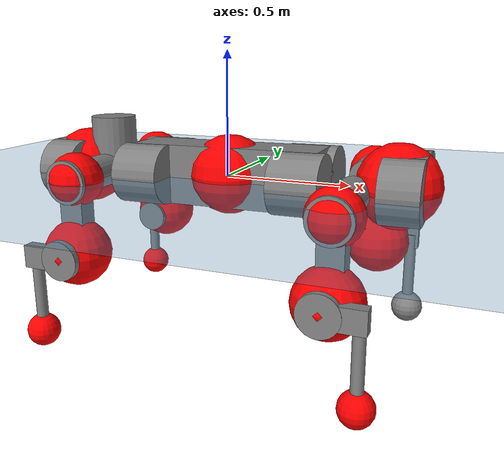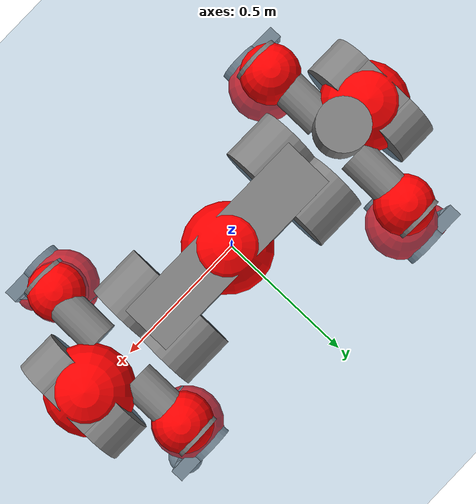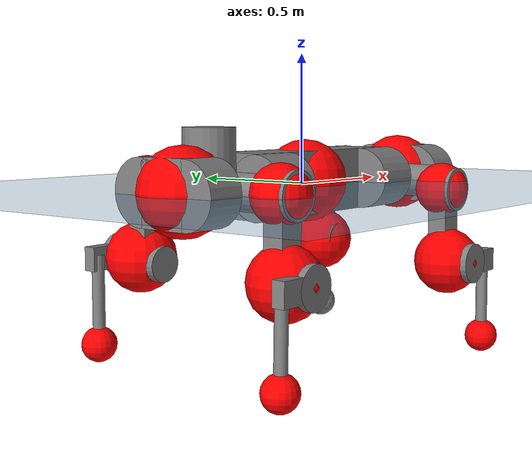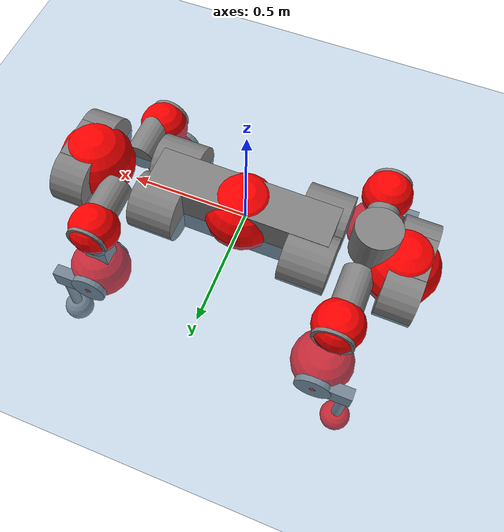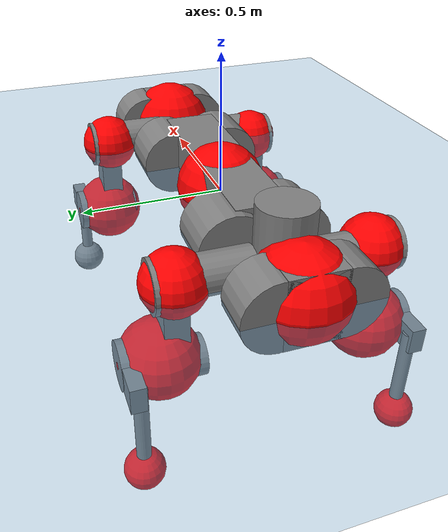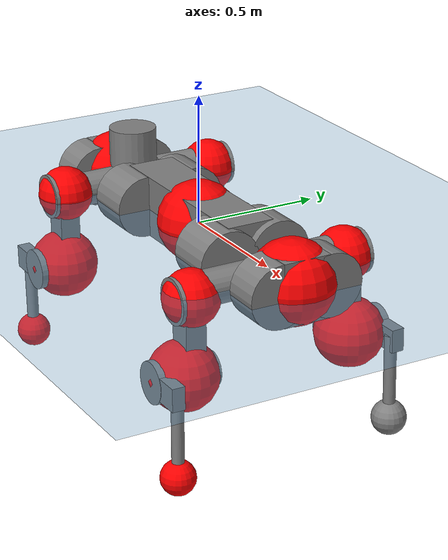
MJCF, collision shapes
<mujoco model="anymal_c">
  <compiler angle="radian" assetdir="assets" balanceinertia="true" inertiafromgeom="false"/>

  <option timestep="0.005" density="1.2" viscosity="2e-05"/>

  <size nkey="1"/>

  <visual>
    <quality shadowsize="8192"/>
    <map shadowclip="0.5"/>
  </visual>

  <default>
    <default class="/">
      <material specular="0" shininess="0.25"/>
      <geom contype="0" conaffinity="0" group="1" solref="-1000 -80"/>
      <site size="0.01 0.005 0.005" group="5"/>
      <general forcelimited="true" forcerange="-80 80" biastype="affine" gainprm="80" biasprm="0 -80 -2"/>
      <default class="anymal_c">
        <joint armature="0.01" damping="0.01" frictionloss="0.1"/>
        <default class="visual">
          <geom type="mesh" group="2"/>
          <default class="visual_zflip"/>
        </default>
        <default class="collision">
          <geom type="cylinder" group="3"/>
          <default class="foot">
            <geom size="0.03 0 0" type="sphere" condim="6" priority="1" friction="0.8 0.02 0.01" solimp="0.015 1 0.03"/>
          </default>
        </default>
      </default>
      <default class="reward_collision_sphere">
        <geom group="5" rgba="1 0 0 1"/>
      </default>
    </default>
  </default>

  <asset>
    <texture type="skybox" colorspace="auto" name="//unnamed_texture_0" builtin="gradient" rgb1="0.95 0.95 0.95" rgb2="0.95 0.95 0.95" width="100" height="600"/>
    <texture type="2d" colorspace="auto" name="texplane" builtin="checker" rgb1="0.345 0.575 0.748" rgb2="0.345 0.575 0.748" markrgb="1 1 1" width="512" height="512"/>
    <texture type="2d" colorspace="linear" name="base" file="base.png"/>
    <texture type="2d" colorspace="linear" name="top_shell" file="top_shell.png"/>
    <texture type="2d" colorspace="linear" name="bottom_shell" file="bottom_shell.png"/>
    <texture type="2d" colorspace="linear" name="remote" file="remote.png"/>
    <texture type="2d" colorspace="linear" name="hatch" file="hatch.png"/>
    <texture type="2d" colorspace="linear" name="handle" file="handle.png"/>
    <texture type="2d" colorspace="linear" name="face" file="face.png"/>
    <texture type="2d" colorspace="linear" name="battery" file="battery.png"/>
    <texture type="2d" colorspace="linear" name="lidar_cage" file="lidar_cage.png"/>
    <texture type="2d" colorspace="linear" name="depth_camera" file="depth_camera.png"/>
    <texture type="2d" colorspace="linear" name="wide_angle_camera" file="wide_angle_camera.png"/>
    <texture type="2d" colorspace="linear" name="lidar" file="lidar.png"/>
    <texture type="2d" colorspace="linear" name="drive" file="drive.png"/>
    <texture type="2d" colorspace="linear" name="hip_l" file="hip_l.png"/>
    <texture type="2d" colorspace="linear" name="shank_l" file="shank_l.png"/>
    <texture type="2d" colorspace="linear" name="foot" file="foot.png"/>
    <texture type="2d" colorspace="linear" name="thigh" file="thigh.png"/>
    <texture type="2d" colorspace="linear" name="shank_r" file="shank_r.png"/>
    <texture type="2d" colorspace="linear" name="hip_r" file="hip_r.png"/>
    <material name="MatPlane" class="/" texture="texplane" texuniform="true" texrepeat="2 2" specular="0.9" shininess="0.5"/>
    <material name="black_plastic" class="/" rgba="0.007 0.007 0.007 1"/>
    <material name="green" class="/" rgba="0.052 0.178 0.033 1"/>
    <material name="red" class="/" rgba="0.178 0.006 0.005 1"/>
    <material name="yellow" class="/" rgba="0.178 0.119 0.006 1"/>
    <material name="lwl" class="/" rgba="0.8 0.8 0.8 1"/>
    <material name="base" class="/" texture="base"/>
    <material name="top_shell" class="/" texture="top_shell"/>
    <material name="bottom_shell" class="/" texture="bottom_shell"/>
    <material name="hip_l" class="/" texture="hip_l"/>
    <material name="thigh" class="/" texture="thigh"/>
    <material name="shank_l" class="/" texture="shank_l"/>
    <material name="foot" class="/" texture="foot"/>
    <material name="hip_r" class="/" texture="hip_r"/>
    <material name="shank" class="/" texture="shank_r"/>
    <material name="hatch" class="/" texture="hatch"/>
    <material name="remote" class="/" texture="remote"/>
    <material name="handle" class="/" texture="handle"/>
    <material name="face" class="/" texture="face"/>
    <material name="depth_camera" class="/" texture="depth_camera"/>
    <material name="wide_angle_camera" class="/" texture="wide_angle_camera"/>
    <material name="battery" class="/" texture="battery"/>
    <material name="lidar_cage" class="/" texture="lidar_cage"/>
    <material name="lidar" class="/" texture="lidar"/>
    <material name="drive" class="/" texture="drive"/>
    <mesh name="base_0" class="/" file="base_0.obj"/>
    <mesh name="base_1" class="/" file="base_1.obj"/>
    <mesh name="base_2" class="/" file="base_2.obj"/>
    <mesh name="base_3" class="/" file="base_3.obj"/>
    <mesh name="base_4" class="/" file="base_4.obj"/>
    <mesh name="base_5" class="/" file="base_5.obj"/>
    <mesh name="top_shell" class="/" file="top_shell.obj"/>
    <mesh name="bottom_shell" class="/" file="bottom_shell.obj"/>
    <mesh name="remote" class="/" file="remote.obj"/>
    <mesh name="handle" class="/" file="handle.obj"/>
    <mesh name="face" class="/" file="face.obj"/>
    <mesh name="wide_angle_camera" class="/" file="wide_angle_camera.obj"/>
    <mesh name="depth_camera" class="/" file="depth_camera.obj"/>
    <mesh name="battery" class="/" file="battery.obj"/>
    <mesh name="lidar_cage" class="/" file="lidar_cage.obj"/>
    <mesh name="lidar" class="/" file="lidar.obj"/>
    <mesh name="drive" class="/" file="drive.obj"/>
    <mesh name="hip_l" class="/" file="hip_l.obj"/>
    <mesh name="thigh" class="/" file="thigh.obj"/>
    <mesh name="shank_l" class="/" file="shank_l.obj"/>
    <mesh name="foot" class="/" file="foot.obj"/>
    <mesh name="hip_r" class="/" file="hip_r.obj"/>
    <mesh name="hatch" class="/" file="hatch.obj"/>
    <mesh name="shank_r" class="/" file="shank_r.obj"/>
  </asset>

  <worldbody>
    <geom name="floor" class="/" size="100 100 0.125" type="plane" group="0" material="MatPlane"/>
    <light name="toplight_shadow" class="/" pos="0 0 5" dir="0.0990148 0.0990148 -0.990148" type="directional" ambient="0.04 0.04 0.04" diffuse="0.55 0.55 0.55" specular="0.12 0.12 0.12"/>
    <light name="toplight_fill" class="/" pos="0 0 5" dir="0.0990148 0.0990148 -0.990148" type="directional" castshadow="false" ambient="0.04 0.04 0.04" diffuse="0.3 0.3 0.3" specular="0.08 0.08 0.08"/>
    <body name="trunk" childclass="anymal_c" pos="0.0143502 -0.0065081 0.0117462" quat="0.999978 0.00388119 -0.00388217 -0.0037758">
      <inertial pos="0.0156609 -0.012239 0.0470566" quat="0.510746 0.504406 0.54334 0.43531" mass="38.6088" diaginertia="3.16297 4.55774 0.164446"/>
      <joint name="//unnamed_joint_0" type="free" armature="0" damping="0" frictionloss="0"/>
      <geom name="//unnamed_geom_1" class="visual" material="green" mesh="base_0"/>
      <geom name="//unnamed_geom_2" class="visual" material="yellow" mesh="base_1"/>
      <geom name="//unnamed_geom_3" class="visual" material="red" mesh="base_2"/>
      <geom name="//unnamed_geom_4" class="visual" material="black_plastic" mesh="base_3"/>
      <geom name="//unnamed_geom_5" class="visual" material="lwl" mesh="base_4"/>
      <geom name="//unnamed_geom_6" class="visual" material="base" mesh="base_5"/>
      <geom name="trunk_1" class="collision" size="0.387172 0.0934554 0.120157" type="box"/>
      <geom name="trunk_2" class="collision" size="0.120157 0.0967931" pos="0.323641 0.104489 0" quat="0.707107 0 0.707107 0"/>
      <geom name="trunk_3" class="collision" size="0.120157 0.0967931" pos="-0.323641 0.104489 0" quat="0.707107 0 0.707107 0"/>
      <geom name="trunk_4" class="collision" size="0.120157 0.0967931" pos="0.323641 -0.104489 0" quat="0.707107 0 0.707107 0"/>
      <geom name="trunk_5" class="collision" size="0.120157 0.0967931" pos="-0.323641 -0.104489 0" quat="0.707107 0 0.707107 0"/>
      <geom name="//unnamed_geom_12" class="visual" material="top_shell" mesh="top_shell"/>
      <geom name="//unnamed_geom_13" class="visual" material="bottom_shell" mesh="bottom_shell"/>
      <geom name="//unnamed_geom_14" class="visual" material="remote" mesh="remote"/>
      <geom name="//unnamed_geom_15" class="visual" material="handle" mesh="handle"/>
      <geom name="//unnamed_geom_16" class="visual" pos="0.616778 0 0" quat="1 0 0 0" material="face" mesh="face"/>
      <geom name="trunk_6" class="collision" size="0.0734292 0.0934554 0.120157" pos="0.698618 0 0" type="box"/>
      <geom name="//unnamed_geom_18" class="collision" size="0.120157 0.0734292" pos="0.698618 0.104489 0" quat="0.707107 0 0.707107 0"/>
      <geom name="//unnamed_geom_19" class="collision" size="0.120157 0.0734292" pos="0.698618 -0.104489 0" quat="0.707107 0 0.707107 0"/>
      <geom name="//unnamed_geom_20" class="visual" pos="0.686918 0 -0.0263935" quat="0.965926 0 0.258819 0" material="depth_camera" mesh="depth_camera"/>
      <geom name="//unnamed_geom_21" class="visual" pos="0.763346 0 0.0153371" material="wide_angle_camera" mesh="wide_angle_camera"/>
      <geom name="//unnamed_geom_22" class="visual_zflip" pos="-0.616778 0 0" quat="0 0 0 1" material="face" mesh="face"/>
      <geom name="trunk_7" class="collision" size="0.0734292 0.0934554 0.120157" pos="-0.698618 0 0" quat="0 0 0 1" type="box"/>
      <geom name="//unnamed_geom_24" class="collision" size="0.120157 0.0734292" pos="-0.698618 -0.104489 0" quat="0 -0.707107 0 0.707107"/>
      <geom name="//unnamed_geom_25" class="collision" size="0.120157 0.0734292" pos="-0.698618 0.104489 0" quat="0 -0.707107 0 0.707107"/>
      <geom name="//unnamed_geom_26" class="visual" pos="-0.686918 0 -0.0263935" quat="0 -0.258819 0 0.965926" material="depth_camera" mesh="depth_camera"/>
      <geom name="//unnamed_geom_27" class="visual_zflip" pos="-0.763346 0 0.0153371" quat="0 0 0 1" material="wide_angle_camera" mesh="wide_angle_camera"/>
      <geom name="//unnamed_geom_28" class="visual" material="battery" mesh="battery"/>
      <geom name="//unnamed_geom_29" class="visual" pos="0 0.114175 0.0332848" quat="0.683013 -0.183013 0.183013 0.683013" material="depth_camera" mesh="depth_camera"/>
      <geom name="//unnamed_geom_30" class="visual" pos="0 -0.114175 0.0332848" quat="0.683013 0.183013 0.183013 -0.683013" material="depth_camera" mesh="depth_camera"/>
      <geom name="//unnamed_geom_31" class="visual" pos="-0.541634 0 0.0753023" quat="1 0 0 0" material="lidar_cage" mesh="lidar_cage"/>
      <geom name="trunk_8" class="collision" size="0.0934554 0.0801046" pos="-0.541634 0 0.136774"/>
      <geom name="//unnamed_geom_33" class="visual" pos="-0.541634 1.84673e-06 0.145687" quat="0.707107 0 0 -0.707107" material="lidar" mesh="lidar"/>
      <geom name="//unnamed_geom_34" class="visual" pos="0.446253 0.155075 8.07623e-09" quat="0.258819 0.965926 0 0" material="drive" mesh="drive"/>
      <geom name="//unnamed_geom_35" class="visual" pos="0.446253 -0.155075 -8.07623e-09" quat="0.258819 -0.965926 0 0" material="drive" mesh="drive"/>
      <geom name="//unnamed_geom_36" class="visual" pos="-0.446253 0.155075 -8.07623e-09" quat="0 0 0.965926 -0.258819" material="drive" mesh="drive"/>
      <geom name="//unnamed_geom_37" class="visual" pos="-0.446253 -0.155075 8.07623e-09" quat="0 0 -0.965926 -0.258819" material="drive" mesh="drive"/>
      <geom name="//unnamed_geom_38" class="visual" pos="0.172609 0 0.07479" quat="1 0 0 0" material="hatch" mesh="hatch"/>
      <geom name="//unnamed_geom_39" class="reward_collision_sphere" size="0.160209"/>
      <geom name="//unnamed_geom_40" class="reward_collision_sphere" size="0.160209" pos="0.669602 0 0"/>
      <geom name="//unnamed_geom_41" class="reward_collision_sphere" size="0.160209" pos="-0.669602 0 0"/>
      <site name="imu" pos="0.308438 0.110538 0.0967067" size="0.0133508"/>
      <camera name="track" pos="0 -2.98541 0" quat="0.707107 0.707107 0 0" mode="trackcom"/>
      <camera name="ego_camera" pos="0.669602 0 -0.0409808" quat="-0.5 -0.5 0.5 0.5"/>
      <body name="LF_HIP" pos="0.442212 0.159004 0.00949868" quat="0.253674 0.967257 0.00793298 -0.00096597">
        <inertial pos="0.0962286 -0.0276104 2.90041e-05" quat="-0.113925 0.756421 -0.148336 0.626773" mass="5.12394" diaginertia="0.0332544 0.0274249 0.00245786"/>
        <joint name="LF_HAA" pos="0 0 0" axis="0.998109 0.0528291 -0.0314149" stiffness="0.0168774" range="-1.07012 0.523255" armature="0.00273695" damping="0" frictionloss="0.178039"/>
        <geom name="//unnamed_geom_42" class="visual" pos="0 0.000475088 -7.80328e-05" quat="0.258819 -0.965926 0 0" material="hip_l" mesh="hip_l"/>
        <geom name="//unnamed_geom_43" class="visual" pos="0.0891315 -0.107897 -0.0588316" quat="0.183013 -0.683013 0.683013 0.183013" material="drive" mesh="drive"/>
        <geom name="//unnamed_geom_44" class="collision" size="0.0667538 0.0934554" pos="0.0891315 -0.0178525 -0.00707432" quat="-0.353553 -0.612372 0.612372 -0.353553"/>
        <body name="LF_THIGH" pos="0.0891858 -0.100712 -0.03504" quat="0.183459 -0.682502 0.683161 0.183914">
          <inertial pos="0.0503531 0.0177094 -0.232054" quat="0.995438 -0.0185223 -0.0835536 0.0421684" mass="7.48981" diaginertia="0.189614 0.240566 0.00403983"/>
          <joint name="LF_HFE" pos="0 0 0" axis="0.999367 -0.00381297 -0.0353728" range="-3.18624 2.76009" armature="0.0219102" damping="0.109183" frictionloss="0.130792"/>
          <geom name="//unnamed_geom_45" class="visual" pos="-9.35228e-05 -1.4737e-07 0" quat="0.707107 0 0 -0.707107" material="thigh" mesh="thigh"/>
          <geom name="//unnamed_geom_46" class="collision" size="0.08678 0.0534031" pos="0.0595202 0 0" quat="0.5 0.5 -0.5 -0.5"/>
          <geom name="//unnamed_geom_47" class="collision" size="0.0500654 0.0400523 0.188665" pos="0.0446401 0 -0.144779" quat="0.707107 0 0 -0.707107" type="box"/>
          <geom name="//unnamed_geom_48" class="visual" pos="0.149247 0 -0.291988" quat="1 0 0 0" material="drive" mesh="drive"/>
          <geom name="//unnamed_geom_49" class="collision" size="0.0667538 0.0934554" pos="0.0450865 0 -0.291988" quat="0.707107 0 0.707107 0"/>
          <geom name="//unnamed_geom_50" class="reward_collision_sphere" size="0.106806" pos="0.0372001 0 0"/>
          <body name="LF_SHANK" pos="0.129475 -0.0184374 -0.306027" quat="1 -0.00012963 -7.79783e-05 0.000110368">
            <inertial pos="0.0170745 -0.0790786 -0.096523" quat="0.992762 -0.115026 0.00481529 -0.034193" mass="1.04275" diaginertia="0.0583351 0.071816 0.00117456"/>
            <joint name="LF_KFE" pos="0 0 0" axis="1 -9.64399e-05 -0.000316891" stiffness="0.0949858" range="-3.41526 3.47497" armature="0.0135408" damping="0.0194826" frictionloss="0.174719"/>
            <geom name="//unnamed_geom_51" class="visual" pos="-3.04957e-05 -0.000162605 0" quat="0.707107 0 0 -0.707107" material="shank_l" mesh="shank_l"/>
            <geom name="LF_kfe_act" class="collision" size="0.0801046 0.0267015" pos="0.0297601 0 0" quat="0.5 0.5 -0.5 -0.5"/>
            <geom name="//unnamed_geom_53" class="collision" size="0.0767656 0.0450588 0.0253665" pos="0.0297601 -0.0858291 0" quat="0.5 0.5 -0.5 -0.5" type="box"/>
            <geom name="//unnamed_geom_54" class="visual" pos="0.0194185 -0.131336 -0.346257" quat="0.382683 0 0 -0.92388" material="foot" mesh="foot"/>
            <geom name="LF_calf" class="collision" size="0.0233638 0.188582" pos="0.0194185 -0.131283 -0.173129" quat="0.707107 0 0 -0.707107"/>
            <geom name="LF_foot" class="foot" size="0.0674079" pos="0.0194185 -0.131283 -0.323206" quat="0.707107 0 0 -0.707107"/>
            <geom name="//unnamed_geom_57" class="reward_collision_sphere" size="0.133508" pos="-0.0744002 0 0"/>
            <geom name="//unnamed_geom_58" class="reward_collision_sphere" size="0.0667538" pos="0.0194185 -0.131283 -0.323206"/>
            <site name="LF_foot" class="foot" pos="0.0194185 -0.131283 -0.323206" quat="0.707107 0 0 -0.707107" size="0.0133508"/>
          </body>
        </body>
      </body>
      <body name="RF_HIP" pos="0.434798 -0.167113 -0.0180414" quat="0.260496 -0.965475 0.000613924 -0.000670644">
        <inertial pos="0.0929797 0.0367344 -0.0124523" quat="0.169327 0.627078 0.0844565 0.755625" mass="5.25537" diaginertia="0.0379611 0.0244486 0.00261126"/>
        <joint name="RF_HAA" pos="0 0 0" axis="0.999952 -0.00971977 -0.00129793" range="-0.783116 0.618663" armature="0.0130095" damping="0.0165064" frictionloss="0.0697931"/>
        <geom name="//unnamed_geom_59" class="visual" pos="0 -0.000475084 -7.80326e-05" quat="0.258819 0.965926 0 0" material="hip_r" mesh="hip_r"/>
        <geom name="//unnamed_geom_60" class="visual" pos="0.0891315 0.107897 -0.0588316" quat="0.183013 0.683013 0.683013 -0.183013" material="drive" mesh="drive"/>
        <geom name="//unnamed_geom_61" class="collision" size="0.0667538 0.0934554" pos="0.0891315 0.0178525 -0.00707432" quat="-0.353553 0.612372 0.612372 0.353553"/>
        <body name="RF_THIGH" pos="0.0778199 0.112381 -0.0274895" quat="0.186156 0.680427 0.684284 -0.184715">
          <inertial pos="0.0479824 -0.00075108 -0.23338" quat="0.978581 -0.0330448 -0.0890044 0.18266" mass="5.01247" diaginertia="0.196513 0.172159 0.00366932"/>
          <joint name="RF_HFE" pos="0 0 0" axis="0.999956 -0.00862468 0.00365455" stiffness="0.014212" range="-2.77938 2.83068" armature="0.0229197" damping="0.0300956" frictionloss="0.0811305"/>
          <geom name="//unnamed_geom_62" class="visual" pos="-9.35228e-05 -1.4737e-07 0" quat="0.707107 0 0 -0.707107" material="thigh" mesh="thigh"/>
          <geom name="//unnamed_geom_63" class="collision" size="0.08678 0.0534031" pos="0.0595202 0 0" quat="0.5 0.5 0.5 0.5"/>
          <geom name="//unnamed_geom_64" class="collision" size="0.0500654 0.0400523 0.188665" pos="0.0446401 0 -0.144779" quat="0.707107 0 0 0.707107" type="box"/>
          <geom name="//unnamed_geom_65" class="visual" pos="0.149247 0 -0.291988" quat="1 0 0 0" material="drive" mesh="drive"/>
          <geom name="//unnamed_geom_66" class="collision" size="0.0667538 0.0934554" pos="0.0450865 0 -0.291988" quat="0.707107 0 0.707107 0"/>
          <geom name="//unnamed_geom_67" class="reward_collision_sphere" size="0.106806" pos="0.0372001 0 0"/>
          <body name="RF_SHANK" pos="0.143227 -0.00534381 -0.295319" quat="1 0.000220032 -0.00033673 0.000288163">
            <inertial pos="0.000818595 0.0875158 -0.102601" quat="0.988829 0.139401 0.0521866 0.00776819" mass="2.08188" diaginertia="0.0804282 0.0647862 0.00192069"/>
            <joint name="RF_KFE" pos="0 0 0" axis="0.998982 -0.0448701 -0.00469498" stiffness="0.0144991" range="-3.21214 3.38089" armature="0.00380209" damping="0.0247911" frictionloss="0.137595"/>
            <geom name="//unnamed_geom_68" class="visual" pos="-3.04956e-05 0.000162604 0" quat="0.707107 0 0 0.707107" material="shank" mesh="shank_r"/>
            <geom name="RF_kfe_act" class="collision" size="0.0801046 0.0267015" pos="0.0297601 0 0" quat="0.5 0.5 0.5 0.5"/>
            <geom name="//unnamed_geom_70" class="collision" size="0.0767656 0.0450588 0.0253665" pos="0.0297601 0.0858291 0" quat="0.5 0.5 0.5 0.5" type="box"/>
            <geom name="//unnamed_geom_71" class="visual" pos="0.0194185 0.131336 -0.346257" quat="0.382683 0 0 0.92388" material="foot" mesh="foot"/>
            <geom name="RF_calf" class="collision" size="0.0233638 0.188582" pos="0.0194185 0.131283 -0.173129" quat="0.707107 0 0 0.707107"/>
            <geom name="RF_foot" class="foot" size="0.0257199" pos="0.0194185 0.131283 -0.323206" quat="0.707107 0 0 0.707107"/>
            <geom name="//unnamed_geom_74" class="reward_collision_sphere" size="0.133508" pos="-0.0744002 0 0"/>
            <geom name="//unnamed_geom_75" class="reward_collision_sphere" size="0.0667538" pos="0.0194185 0.131283 -0.323206"/>
            <site name="RF_foot" class="foot" pos="0.0194185 0.131283 -0.323206" quat="0.707107 0 0 0.707107" size="0.0133508"/>
          </body>
        </body>
      </body>
      <body name="LH_HIP" pos="-0.439039 0.166652 0.0176383" quat="0.00118146 0.00042323 0.965894 -0.258935">
        <inertial pos="0.0812714 0.0280869 0.00889713" quat="0.159171 0.669662 0.146457 0.71047" mass="5.57023" diaginertia="0.0364735 0.0460114 0.00373328"/>
        <joint name="LH_HAA" pos="0 0 0" axis="0.999997 0.00127323 0.00195187" range="-0.874733 0.374259" armature="0.013117" damping="0.0712057" frictionloss="0.0182702"/>
        <geom name="//unnamed_geom_76" class="visual" pos="0 -0.000475084 -7.80326e-05" quat="-0.258819 -0.965926 0 0" material="hip_r" mesh="hip_r"/>
        <geom name="//unnamed_geom_77" class="visual" pos="0.0891315 0.107897 -0.0588316" quat="0.183013 0.683013 0.683013 -0.183013" material="drive" mesh="drive"/>
        <geom name="//unnamed_geom_78" class="collision" size="0.0667538 0.0934554" pos="0.0891315 0.0178525 -0.00707432" quat="-0.353553 0.612372 0.612372 0.353553"/>
        <body name="LH_THIGH" pos="0.0841595 0.116614 -0.0492672" quat="0.182957 0.683084 0.682928 -0.183121">
          <inertial pos="0.0627995 -0.0068366 -0.232166" quat="0.979406 -0.0344403 -0.127856 0.152416" mass="6.90572" diaginertia="0.234545 0.182467 0.00499023"/>
          <joint name="LH_HFE" pos="0 0 0" axis="0.996433 0.0276713 0.079723" stiffness="0.0469175" range="-2.79606 3.28739" armature="0.0064109" damping="0" frictionloss="0.157003"/>
          <geom name="//unnamed_geom_79" class="visual" pos="-9.35228e-05 -1.4737e-07 0" quat="0.707107 0 0 -0.707107" material="thigh" mesh="thigh"/>
          <geom name="//unnamed_geom_80" class="collision" size="0.08678 0.0534031" pos="0.0595202 0 0" quat="0.5 0.5 -0.5 -0.5"/>
          <geom name="//unnamed_geom_81" class="collision" size="0.0500654 0.0400523 0.188665" pos="0.0446401 0 -0.144779" quat="0.707107 0 0 -0.707107" type="box"/>
          <geom name="//unnamed_geom_82" class="visual" pos="0.149247 0 -0.291988" quat="1 0 0 0" material="drive" mesh="drive"/>
          <geom name="//unnamed_geom_83" class="collision" size="0.0667538 0.0934554" pos="0.0450865 0 -0.291988" quat="0.707107 0 0.707107 0"/>
          <geom name="//unnamed_geom_84" class="reward_collision_sphere" size="0.106806" pos="0.0372001 0 0"/>
          <body name="LH_SHANK" pos="0.162207 -0.010774 -0.277148" quat="0.999997 0.000698825 -0.00165294 0.00144516">
            <inertial pos="-0.00436552 0.104362 -0.0963473" quat="0.99084 0.112014 -0.0753835 0.00245963" mass="1.60539" diaginertia="0.0737462 0.0576313 0.00136985"/>
            <joint name="LH_KFE" pos="0 0 0" axis="0.998218 0.0570802 0.0173733" stiffness="0.0984554" range="-3.33117 3.12419" armature="0.00822402" damping="0" frictionloss="0.0486921"/>
            <geom name="//unnamed_geom_85" class="visual" pos="-3.04956e-05 0.000162604 0" quat="-0.707107 0 0 -0.707107" material="shank" mesh="shank_r"/>
            <geom name="LH_kfe_act" class="collision" size="0.0801046 0.0267015" pos="0.0297601 0 0" quat="0.5 0.5 -0.5 -0.5"/>
            <geom name="//unnamed_geom_87" class="collision" size="0.0767656 0.0450588 0.0253665" pos="0.0297601 0.0858291 0" quat="0.5 0.5 -0.5 -0.5" type="box"/>
            <geom name="//unnamed_geom_88" class="visual" pos="0.0194185 0.131336 -0.346257" quat="-0.382683 0 0 -0.92388" material="foot" mesh="foot"/>
            <geom name="LH_calf" class="collision" size="0.0233638 0.188582" pos="0.0194185 0.131283 -0.173129" quat="0.707107 0 0 -0.707107"/>
            <geom name="LH_foot" class="foot" size="0.0248373" pos="0.0194185 0.131283 -0.323206" quat="0.707107 0 0 -0.707107"/>
            <geom name="//unnamed_geom_91" class="reward_collision_sphere" size="0.133508" pos="-0.0744002 0 0"/>
            <geom name="//unnamed_geom_92" class="reward_collision_sphere" size="0.0667538" pos="0.0194185 0.131283 -0.323206"/>
            <site name="LH_foot" class="foot" pos="0.0194185 0.131283 -0.323206" quat="0.707107 0 0 -0.707107" size="0.0133508"/>
          </body>
        </body>
      </body>
      <body name="RH_HIP" pos="-0.446048 -0.146228 0.00139972" quat="0.00341901 -0.00189711 -0.965092 -0.261883">
        <inertial pos="0.0805152 -0.0398905 0.00582025" quat="-0.125117 0.709463 -0.133 0.680675" mass="7.07074" diaginertia="0.0574683 0.0492476 0.00451213"/>
        <joint name="RH_HAA" pos="0 0 0" axis="0.998917 -0.0325889 0.0332115" stiffness="0.0191337" range="-0.920842 0.803951" armature="0.0209642" damping="0.0863211" frictionloss="0.0677917"/>
        <geom name="//unnamed_geom_93" class="visual" pos="0 0.000475088 -7.80328e-05" quat="-0.258819 0.965926 0 0" material="hip_l" mesh="hip_l"/>
        <geom name="//unnamed_geom_94" class="visual" pos="0.0891315 -0.107897 -0.0588316" quat="-0.183013 0.683013 -0.683013 -0.183013" material="drive" mesh="drive"/>
        <geom name="//unnamed_geom_95" class="collision" size="0.0667538 0.0934554" pos="0.0891315 -0.0178525 -0.00707432" quat="0.353553 0.612372 -0.612372 0.353553"/>
        <body name="RH_THIGH" pos="0.0817763 -0.108571 -0.0609145" quat="-0.183568 0.683311 -0.682782 -0.182202">
          <inertial pos="0.0590043 -0.014339 -0.250636" quat="0.993543 0.00273337 -0.0806224 0.0797783" mass="10.4934" diaginertia="0.227763 0.284311 0.00455024"/>
          <joint name="RH_HFE" pos="0 0 0" axis="0.998762 0.0352806 -0.0350812" range="-2.78015 2.79682" armature="0.00994698" damping="0.0117674" frictionloss="0.240298"/>
          <geom name="//unnamed_geom_96" class="visual" pos="-9.35228e-05 -1.4737e-07 0" quat="0.707107 0 0 -0.707107" material="thigh" mesh="thigh"/>
          <geom name="//unnamed_geom_97" class="collision" size="0.08678 0.0534031" pos="0.0595202 0 0" quat="0.5 0.5 0.5 0.5"/>
          <geom name="//unnamed_geom_98" class="collision" size="0.0500654 0.0400523 0.188665" pos="0.0446401 0 -0.144779" quat="0.707107 0 0 0.707107" type="box"/>
          <geom name="//unnamed_geom_99" class="visual" pos="0.149247 0 -0.291988" quat="1 0 0 0" material="drive" mesh="drive"/>
          <geom name="//unnamed_geom_100" class="collision" size="0.0667538 0.0934554" pos="0.0450865 0 -0.291988" quat="0.707107 0 0.707107 0"/>
          <geom name="//unnamed_geom_101" class="reward_collision_sphere" size="0.106806" pos="0.0372001 0 0"/>
          <body name="RH_SHANK" pos="0.130967 0.00119853 -0.292901" quat="0.999994 -0.00045894 0.00330774 -0.000857356">
            <inertial pos="-0.00154686 -0.0917613 -0.0805094" quat="0.992921 -0.118241 0.00944728 0.00617444" mass="1.94669" diaginertia="0.0952573 0.0856807 0.00138941"/>
            <joint name="RH_KFE" pos="0 0 0" axis="0.998121 0.0423133 0.0443241" stiffness="0.0616112" range="-3.12073 2.88723" armature="0.0203087" damping="0.0937646" frictionloss="0.156977"/>
            <geom name="//unnamed_geom_102" class="visual" pos="-3.04957e-05 -0.000162605 0" quat="0.707107 0 0 -0.707107" material="shank_l" mesh="shank_l"/>
            <geom name="RH_kfe_act" class="collision" size="0.0801046 0.0267015" pos="0.0297601 0 0" quat="0.5 0.5 0.5 0.5"/>
            <geom name="//unnamed_geom_104" class="collision" size="0.0767656 0.0450588 0.0253665" pos="0.0297601 -0.0858291 0" quat="0.5 0.5 0.5 0.5" type="box"/>
            <geom name="//unnamed_geom_105" class="visual" pos="0.0194185 -0.131336 -0.346257" quat="0.382683 0 0 -0.92388" material="foot" mesh="foot"/>
            <geom name="RH_calf" class="collision" size="0.0233638 0.188582" pos="0.0194185 -0.131283 -0.173129" quat="0.707107 0 0 0.707107"/>
            <geom name="RH_foot" class="foot" size="0.0514445" pos="0.0194185 -0.131283 -0.323206" quat="0.707107 0 0 0.707107"/>
            <geom name="//unnamed_geom_108" class="reward_collision_sphere" size="0.133508" pos="-0.0744002 0 0"/>
            <geom name="//unnamed_geom_109" class="reward_collision_sphere" size="0.0667538" pos="0.0194185 -0.131283 -0.323206"/>
            <site name="RH_foot" class="foot" pos="0.0194185 -0.131283 -0.323206" quat="0.707107 0 0 0.707107" size="0.0133508"/>
          </body>
        </body>
      </body>
    </body>
  </worldbody>

  <contact>
    <pair class="/" geom1="floor" geom2="LF_foot" name="//unnamed_contact_0"/>
    <pair class="/" geom1="floor" geom2="RF_foot" name="//unnamed_contact_1"/>
    <pair class="/" geom1="floor" geom2="LH_foot" name="//unnamed_contact_2"/>
    <pair class="/" geom1="floor" geom2="RH_foot" name="//unnamed_contact_3"/>
  </contact>

  <actuator>
    <general name="LF_HAA" class="/" joint="LF_HAA" forcerange="-78.5846 78.5846" gainprm="132.148" biasprm="0 -132.148 -1.54178"/>
    <general name="LF_HFE" class="/" joint="LF_HFE" forcerange="-41.5656 41.5656" gainprm="132.148" biasprm="0 -132.148 -1.54178"/>
    <general name="LF_KFE" class="/" joint="LF_KFE" forcerange="-176.557 176.557" gainprm="132.148" biasprm="0 -132.148 -1.54178"/>
    <general name="RF_HAA" class="/" joint="RF_HAA" forcerange="-85.1994 85.1994" gainprm="132.148" biasprm="0 -132.148 -1.54178"/>
    <general name="RF_HFE" class="/" joint="RF_HFE" forcerange="-54.8724 54.8724" gainprm="132.148" biasprm="0 -132.148 -1.54178"/>
    <general name="RF_KFE" class="/" joint="RF_KFE" forcerange="-26.7018 26.7018" gainprm="132.148" biasprm="0 -132.148 -1.54178"/>
    <general name="LH_HAA" class="/" joint="LH_HAA" forcerange="-36.3826 36.3826" gainprm="132.148" biasprm="0 -132.148 -1.54178"/>
    <general name="LH_HFE" class="/" joint="LH_HFE" forcerange="-61.0907 61.0907" gainprm="132.148" biasprm="0 -132.148 -1.54178"/>
    <general name="LH_KFE" class="/" joint="LH_KFE" forcerange="-93.6135 93.6135" gainprm="132.148" biasprm="0 -132.148 -1.54178"/>
    <general name="RH_HAA" class="/" joint="RH_HAA" forcerange="-123.079 123.079" gainprm="132.148" biasprm="0 -132.148 -1.54178"/>
    <general name="RH_HFE" class="/" joint="RH_HFE" forcerange="-183.872 183.872" gainprm="132.148" biasprm="0 -132.148 -1.54178"/>
    <general name="RH_KFE" class="/" joint="RH_KFE" forcerange="-169.364 169.364" gainprm="132.148" biasprm="0 -132.148 -1.54178"/>
  </actuator>

  <sensor>
    <gyro site="imu" name="imu_angular_velocity"/>
    <velocimeter site="imu" name="imu_linear_velocity"/>
    <framelinvel objtype="site" objname="LF_foot" name="LF_foot_global_linear_velocity"/>
    <framelinvel objtype="site" objname="RF_foot" name="RF_foot_global_linear_velocity"/>
    <framelinvel objtype="site" objname="LH_foot" name="LH_foot_global_linear_velocity"/>
    <framelinvel objtype="site" objname="RH_foot" name="RH_foot_global_linear_velocity"/>
  </sensor>

  <keyframe>
    <key name="home" qpos="0 0 0.55 1 0 0 0 0 0.4 -0.8 0 -0.4 0.8 0 -0.4 0.8 0 0.4 -0.8"/>
  </keyframe>
</mujoco>
